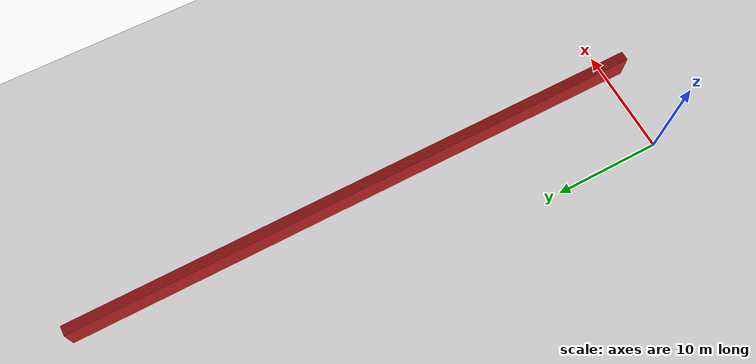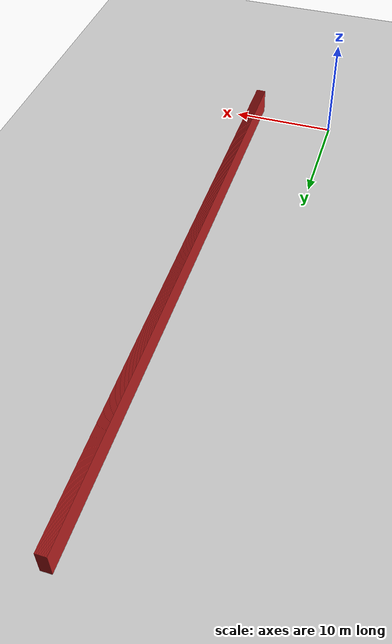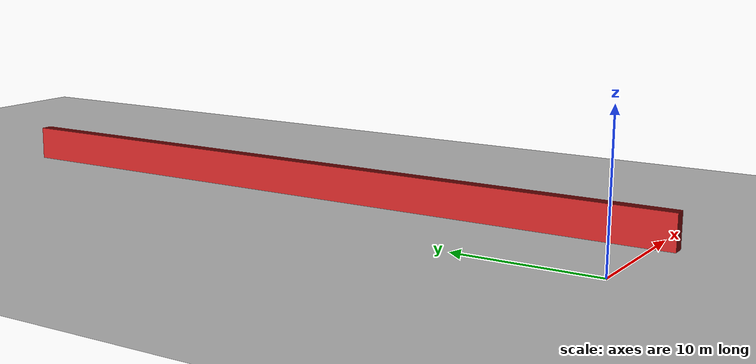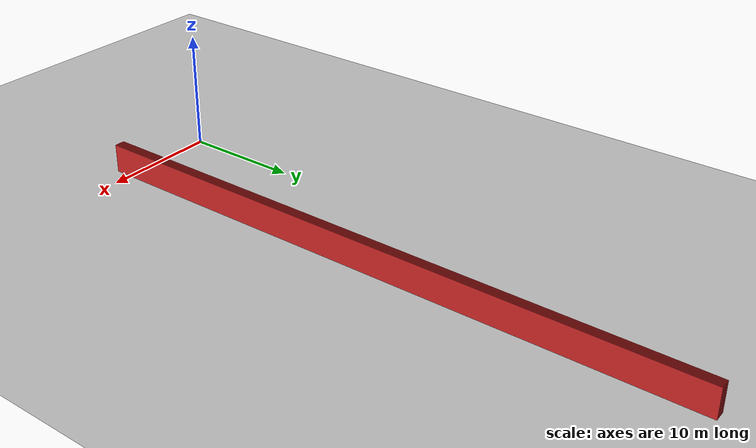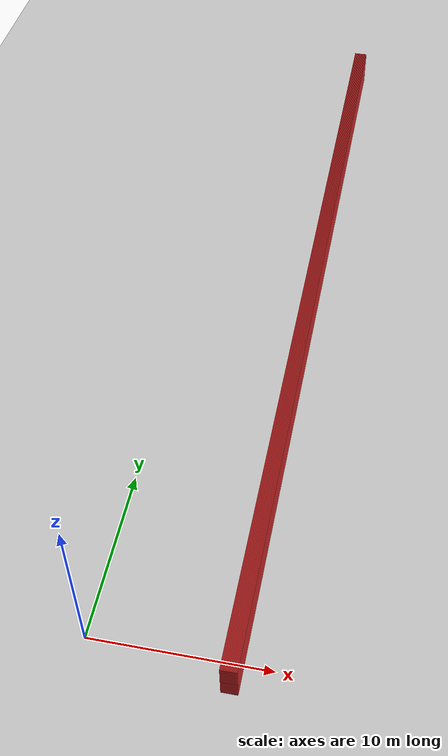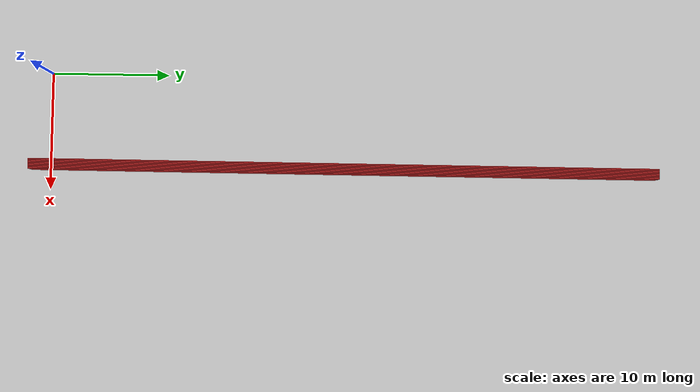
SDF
<sdf version="1.4">
 <world name="1_wall">
  <model name="ground_plane">
   <static>1</static>
   <link name="link">
    <collision name="collision">
     <geometry><plane><normal>0 0 1</normal><size>1000 1000</size></plane></geometry>
     <surface><friction><ode><mu>100</mu><mu2>50</mu2></ode></friction></surface>
    </collision>
    <visual name="visual">
     <cast_shadows>0</cast_shadows>
     <geometry><plane><normal>0 0 1</normal><size>10000 10000</size></plane></geometry>
     <material>
      <script><uri>file://media/materials/scripts/gazebo.material</uri><name>Gazebo/Grey</name></script>
     </material>
    </visual>
    <velocity_decay><linear>0</linear><angular>0</angular></velocity_decay>
   </link>
  </model>
  <model name="Wall_180">
   <static>1</static>
   <link name="Wall_180">
    <collision name="Wall_Collision_180">
     <geometry><box><size>53.65 0.05 2.5</size></box></geometry>
     <pose>0 0 1.25 0 -0 0</pose>
    </collision>
    <visual name="Wall_Visual_180">
     <pose>0 0 1.25 0 -0 0</pose>
     <geometry><box><size>53.65 0.05 2.5</size></box></geometry>
     <material>
      <script><uri>file://media/materials/scripts/gazebo.material</uri><name>Gazebo/Red</name></script>
     </material>
    </visual>
    <velocity_decay><linear>0</linear><angular>0</angular></velocity_decay>
    <pose>7.5 25.3 0 0 0 1.5707963267948966</pose>
   </link>
  </model>
  <model name="Wall_181">
   <static>1</static>
   <link name="Wall_181">
    <collision name="Wall_Collision_181">
     <geometry><box><size>53.65 0.05 2.5</size></box></geometry>
     <pose>0 0 1.25 0 -0 0</pose>
    </collision>
    <visual name="Wall_Visual_181">
     <pose>0 0 1.25 0 -0 0</pose>
     <geometry><box><size>53.65 0.05 2.5</size></box></geometry>
     <material>
      <script><uri>file://media/materials/scripts/gazebo.material</uri><name>Gazebo/Red</name></script>
     </material>
    </visual>
    <velocity_decay><linear>0</linear><angular>0</angular></velocity_decay>
    <pose>7.55 25.3 0 0 0 1.5707963267948966</pose>
   </link>
  </model>
  <model name="Wall_182">
   <static>1</static>
   <link name="Wall_182">
    <collision name="Wall_Collision_182">
     <geometry><box><size>53.65 0.05 2.5</size></box></geometry>
     <pose>0 0 1.25 0 -0 0</pose>
    </collision>
    <visual name="Wall_Visual_182">
     <pose>0 0 1.25 0 -0 0</pose>
     <geometry><box><size>53.65 0.05 2.5</size></box></geometry>
     <material>
      <script><uri>file://media/materials/scripts/gazebo.material</uri><name>Gazebo/Red</name></script>
     </material>
    </visual>
    <velocity_decay><linear>0</linear><angular>0</angular></velocity_decay>
    <pose>7.6 25.3 0 0 0 1.5707963267948966</pose>
   </link>
  </model>
  <model name="Wall_183">
   <static>1</static>
   <link name="Wall_183">
    <collision name="Wall_Collision_183">
     <geometry><box><size>53.65 0.05 2.5</size></box></geometry>
     <pose>0 0 1.25 0 -0 0</pose>
    </collision>
    <visual name="Wall_Visual_183">
     <pose>0 0 1.25 0 -0 0</pose>
     <geometry><box><size>53.65 0.05 2.5</size></box></geometry>
     <material>
      <script><uri>file://media/materials/scripts/gazebo.material</uri><name>Gazebo/Red</name></script>
     </material>
    </visual>
    <velocity_decay><linear>0</linear><angular>0</angular></velocity_decay>
    <pose>7.65 25.3 0 0 0 1.5707963267948966</pose>
   </link>
  </model>
  <model name="Wall_184">
   <static>1</static>
   <link name="Wall_184">
    <collision name="Wall_Collision_184">
     <geometry><box><size>53.65 0.05 2.5</size></box></geometry>
     <pose>0 0 1.25 0 -0 0</pose>
    </collision>
    <visual name="Wall_Visual_184">
     <pose>0 0 1.25 0 -0 0</pose>
     <geometry><box><size>53.65 0.05 2.5</size></box></geometry>
     <material>
      <script><uri>file://media/materials/scripts/gazebo.material</uri><name>Gazebo/Red</name></script>
     </material>
    </visual>
    <velocity_decay><linear>0</linear><angular>0</angular></velocity_decay>
    <pose>7.7 25.3 0 0 0 1.5707963267948966</pose>
   </link>
  </model>
  <model name="Wall_185">
   <static>1</static>
   <link name="Wall_185">
    <collision name="Wall_Collision_185">
     <geometry><box><size>53.65 0.05 2.5</size></box></geometry>
     <pose>0 0 1.25 0 -0 0</pose>
    </collision>
    <visual name="Wall_Visual_185">
     <pose>0 0 1.25 0 -0 0</pose>
     <geometry><box><size>53.65 0.05 2.5</size></box></geometry>
     <material>
      <script><uri>file://media/materials/scripts/gazebo.material</uri><name>Gazebo/Red</name></script>
     </material>
    </visual>
    <velocity_decay><linear>0</linear><angular>0</angular></velocity_decay>
    <pose>7.75 25.3 0 0 0 1.5707963267948966</pose>
   </link>
  </model>
  <model name="Wall_186">
   <static>1</static>
   <link name="Wall_186">
    <collision name="Wall_Collision_186">
     <geometry><box><size>53.65 0.05 2.5</size></box></geometry>
     <pose>0 0 1.25 0 -0 0</pose>
    </collision>
    <visual name="Wall_Visual_186">
     <pose>0 0 1.25 0 -0 0</pose>
     <geometry><box><size>53.65 0.05 2.5</size></box></geometry>
     <material>
      <script><uri>file://media/materials/scripts/gazebo.material</uri><name>Gazebo/Red</name></script>
     </material>
    </visual>
    <velocity_decay><linear>0</linear><angular>0</angular></velocity_decay>
    <pose>7.8 25.3 0 0 0 1.5707963267948966</pose>
   </link>
  </model>
  <model name="Wall_187">
   <static>1</static>
   <link name="Wall_187">
    <collision name="Wall_Collision_187">
     <geometry><box><size>53.65 0.05 2.5</size></box></geometry>
     <pose>0 0 1.25 0 -0 0</pose>
    </collision>
    <visual name="Wall_Visual_187">
     <pose>0 0 1.25 0 -0 0</pose>
     <geometry><box><size>53.65 0.05 2.5</size></box></geometry>
     <material>
      <script><uri>file://media/materials/scripts/gazebo.material</uri><name>Gazebo/Red</name></script>
     </material>
    </visual>
    <velocity_decay><linear>0</linear><angular>0</angular></velocity_decay>
    <pose>7.85 25.3 0 0 0 1.5707963267948966</pose>
   </link>
  </model>
  <model name="Wall_188">
   <static>1</static>
   <link name="Wall_188">
    <collision name="Wall_Collision_188">
     <geometry><box><size>53.65 0.05 2.5</size></box></geometry>
     <pose>0 0 1.25 0 -0 0</pose>
    </collision>
    <visual name="Wall_Visual_188">
     <pose>0 0 1.25 0 -0 0</pose>
     <geometry><box><size>53.65 0.05 2.5</size></box></geometry>
     <material>
      <script><uri>file://media/materials/scripts/gazebo.material</uri><name>Gazebo/Red</name></script>
     </material>
    </visual>
    <velocity_decay><linear>0</linear><angular>0</angular></velocity_decay>
    <pose>7.9 25.3 0 0 0 1.5707963267948966</pose>
   </link>
  </model>
  <model name="Wall_189">
   <static>1</static>
   <link name="Wall_189">
    <collision name="Wall_Collision_189">
     <geometry><box><size>53.65 0.05 2.5</size></box></geometry>
     <pose>0 0 1.25 0 -0 0</pose>
    </collision>
    <visual name="Wall_Visual_189">
     <pose>0 0 1.25 0 -0 0</pose>
     <geometry><box><size>53.65 0.05 2.5</size></box></geometry>
     <material>
      <script><uri>file://media/materials/scripts/gazebo.material</uri><name>Gazebo/Red</name></script>
     </material>
    </visual>
    <velocity_decay><linear>0</linear><angular>0</angular></velocity_decay>
    <pose>7.95 25.3 0 0 0 1.5707963267948966</pose>
   </link>
  </model>
  <model name="Wall_190">
   <static>1</static>
   <link name="Wall_190">
    <collision name="Wall_Collision_190">
     <geometry><box><size>53.65 0.05 2.5</size></box></geometry>
     <pose>0 0 1.25 0 -0 0</pose>
    </collision>
    <visual name="Wall_Visual_190">
     <pose>0 0 1.25 0 -0 0</pose>
     <geometry><box><size>53.65 0.05 2.5</size></box></geometry>
     <material>
      <script><uri>file://media/materials/scripts/gazebo.material</uri><name>Gazebo/Red</name></script>
     </material>
    </visual>
    <velocity_decay><linear>0</linear><angular>0</angular></velocity_decay>
    <pose>8.0 25.3 0 0 0 1.5707963267948966</pose>
   </link>
  </model>
  <model name="Wall_191">
   <static>1</static>
   <link name="Wall_191">
    <collision name="Wall_Collision_191">
     <geometry><box><size>53.65 0.05 2.5</size></box></geometry>
     <pose>0 0 1.25 0 -0 0</pose>
    </collision>
    <visual name="Wall_Visual_191">
     <pose>0 0 1.25 0 -0 0</pose>
     <geometry><box><size>53.65 0.05 2.5</size></box></geometry>
     <material>
      <script><uri>file://media/materials/scripts/gazebo.material</uri><name>Gazebo/Red</name></script>
     </material>
    </visual>
    <velocity_decay><linear>0</linear><angular>0</angular></velocity_decay>
    <pose>8.05 25.3 0 0 0 1.5707963267948966</pose>
   </link>
  </model>
  <model name="Wall_192">
   <static>1</static>
   <link name="Wall_192">
    <collision name="Wall_Collision_192">
     <geometry><box><size>53.65 0.05 2.5</size></box></geometry>
     <pose>0 0 1.25 0 -0 0</pose>
    </collision>
    <visual name="Wall_Visual_192">
     <pose>0 0 1.25 0 -0 0</pose>
     <geometry><box><size>53.65 0.05 2.5</size></box></geometry>
     <material>
      <script><uri>file://media/materials/scripts/gazebo.material</uri><name>Gazebo/Red</name></script>
     </material>
    </visual>
    <velocity_decay><linear>0</linear><angular>0</angular></velocity_decay>
    <pose>8.1 25.3 0 0 0 1.5707963267948966</pose>
   </link>
  </model>
  <model name="Wall_193">
   <static>1</static>
   <link name="Wall_193">
    <collision name="Wall_Collision_193">
     <geometry><box><size>53.65 0.05 2.5</size></box></geometry>
     <pose>0 0 1.25 0 -0 0</pose>
    </collision>
    <visual name="Wall_Visual_193">
     <pose>0 0 1.25 0 -0 0</pose>
     <geometry><box><size>53.65 0.05 2.5</size></box></geometry>
     <material>
      <script><uri>file://media/materials/scripts/gazebo.material</uri><name>Gazebo/Red</name></script>
     </material>
    </visual>
    <velocity_decay><linear>0</linear><angular>0</angular></velocity_decay>
    <pose>8.15 25.3 0 0 0 1.5707963267948966</pose>
   </link>
  </model>
  <model name="Wall_194">
   <static>1</static>
   <link name="Wall_194">
    <collision name="Wall_Collision_194">
     <geometry><box><size>53.65 0.05 2.5</size></box></geometry>
     <pose>0 0 1.25 0 -0 0</pose>
    </collision>
    <visual name="Wall_Visual_194">
     <pose>0 0 1.25 0 -0 0</pose>
     <geometry><box><size>53.65 0.05 2.5</size></box></geometry>
     <material>
      <script><uri>file://media/materials/scripts/gazebo.material</uri><name>Gazebo/Red</name></script>
     </material>
    </visual>
    <velocity_decay><linear>0</linear><angular>0</angular></velocity_decay>
    <pose>8.2 25.3 0 0 0 1.5707963267948966</pose>
   </link>
  </model>
  <model name="Wall_195">
   <static>1</static>
   <link name="Wall_195">
    <collision name="Wall_Collision_195">
     <geometry><box><size>53.65 0.05 2.5</size></box></geometry>
     <pose>0 0 1.25 0 -0 0</pose>
    </collision>
    <visual name="Wall_Visual_195">
     <pose>0 0 1.25 0 -0 0</pose>
     <geometry><box><size>53.65 0.05 2.5</size></box></geometry>
     <material>
      <script><uri>file://media/materials/scripts/gazebo.material</uri><name>Gazebo/Red</name></script>
     </material>
    </visual>
    <velocity_decay><linear>0</linear><angular>0</angular></velocity_decay>
    <pose>8.25 25.3 0 0 0 1.5707963267948966</pose>
   </link>
  </model>
  <model name="Wall_196">
   <static>1</static>
   <link name="Wall_196">
    <collision name="Wall_Collision_196">
     <geometry><box><size>53.65 0.05 2.5</size></box></geometry>
     <pose>0 0 1.25 0 -0 0</pose>
    </collision>
    <visual name="Wall_Visual_196">
     <pose>0 0 1.25 0 -0 0</pose>
     <geometry><box><size>53.65 0.05 2.5</size></box></geometry>
     <material>
      <script><uri>file://media/materials/scripts/gazebo.material</uri><name>Gazebo/Red</name></script>
     </material>
    </visual>
    <velocity_decay><linear>0</linear><angular>0</angular></velocity_decay>
    <pose>8.3 25.3 0 0 0 1.5707963267948966</pose>
   </link>
  </model>
  <model name="Wall_197">
   <static>1</static>
   <link name="Wall_197">
    <collision name="Wall_Collision_197">
     <geometry><box><size>53.65 0.05 2.5</size></box></geometry>
     <pose>0 0 1.25 0 -0 0</pose>
    </collision>
    <visual name="Wall_Visual_197">
     <pose>0 0 1.25 0 -0 0</pose>
     <geometry><box><size>53.65 0.05 2.5</size></box></geometry>
     <material>
      <script><uri>file://media/materials/scripts/gazebo.material</uri><name>Gazebo/Red</name></script>
     </material>
    </visual>
    <velocity_decay><linear>0</linear><angular>0</angular></velocity_decay>
    <pose>8.35 25.3 0 0 0 1.5707963267948966</pose>
   </link>
  </model>
 </world>
</sdf>
